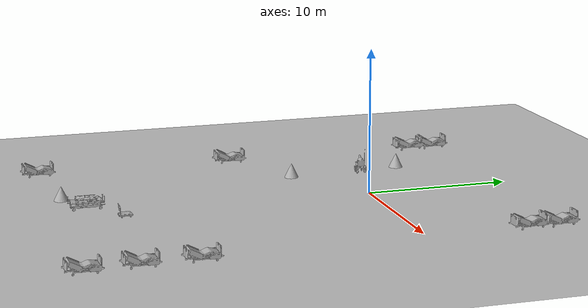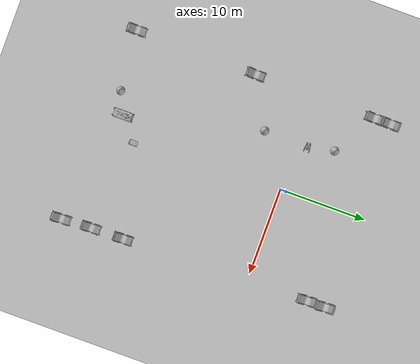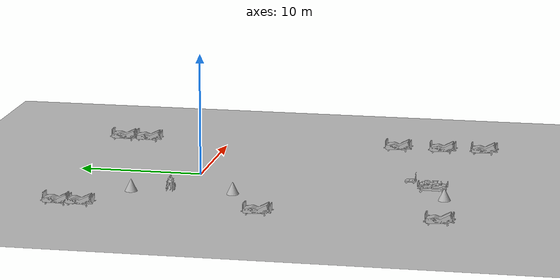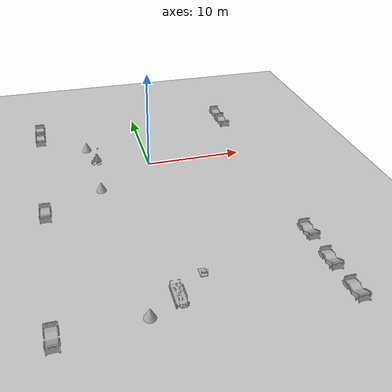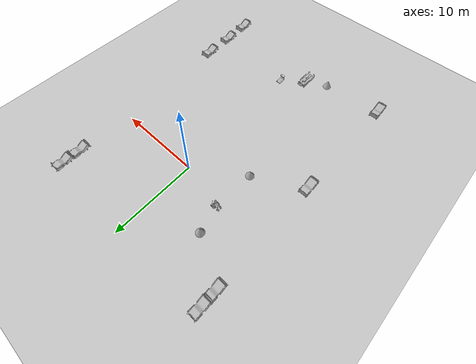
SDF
<sdf version="1.8">
 <world name="hospital_original">
  <gravity>0 0 -9.8</gravity>
  <physics name="default_physics" type="ode">
   <max_step_size>0.001</max_step_size>
   <real_time_factor>1</real_time_factor>
  </physics>
  <scene><ambient>0.6 0.6 0.6 1</ambient><background>0.4 0.4 0.4 1</background><shadows>false</shadows></scene>
  <plugin filename="gz-sim-physics-system" name="gz::sim::systems::Physics"/>
  <plugin filename="gz-sim-user-commands-system" name="gz::sim::systems::UserCommands"/>
  <plugin filename="gz-sim-scene-broadcaster-system" name="gz::sim::systems::SceneBroadcaster"/>
  <plugin filename="gz-sim-sensors-system" name="gz::sim::systems::Sensors">
   <render_engine>ogre2</render_engine>
  </plugin>
  <plugin filename="gz-sim-imu-system" name="gz::sim::systems::Imu"/>
  <plugin filename="gz-sim-contact-system" name="gz::sim::systems::Contact"/>
  <light type="directional" name="sun">
   <pose>0 0 10 0 0 0</pose>
   <diffuse>0.8 0.8 0.8 1</diffuse>
   <specular>0.2 0.2 0.2 1</specular>
   <attenuation>
    <range>1000</range>
    <constant>0.9</constant>
    <linear>0.01</linear>
    <quadratic>0.001</quadratic>
   </attenuation>
   <direction>-0.5 0.1 -0.9</direction>
  </light>
  <model name="ground_plane">
   <static>true</static>
   <link name="link">
    <collision name="collision">
     <geometry><plane><normal>0 0 1</normal><size>100 100</size></plane></geometry>
    </collision>
    <visual name="visual">
     <geometry><plane><normal>0 0 1</normal><size>100 100</size></plane></geometry>
     <material><ambient>0.8 0.8 0.8 1</ambient><diffuse>0.8 0.8 0.8 1</diffuse></material>
    </visual>
   </link>
  </model>
  <include>
   <uri>model://CGMClassic</uri>
   <static>true</static>
   <name>CGMClassic_1</name>
   <pose>11.1777 -18.4129 0 0 0 -3.13719</pose>
  </include>
  <include>
   <uri>model://CGMClassic</uri>
   <static>true</static>
   <name>CGMClassic_2</name>
   <pose>11.1179 -14.6493 0 0 0 -3.13599</pose>
  </include>
  <include>
   <uri>model://PatientWheelChair</uri>
   <static>true</static>
   <name>PatientWheelChair_1</name>
   <pose>-5.46091 1.23577 0 0 0 -1.54828</pose>
  </include>
  <include>
   <uri>model://CGMClassic</uri>
   <static>true</static>
   <name>CGMClassic_3</name>
   <pose>-11.2304 -21.1134 0 0 0 -3.11834</pose>
  </include>
  <include>
   <uri>model://CGMClassic</uri>
   <static>true</static>
   <name>CGMClassic_4</name>
   <pose>-11.0878 -7.00992 0 0 -0 3.1351</pose>
  </include>
  <include>
   <uri>model://CGMClassic</uri>
   <static>true</static>
   <name>CGMClassic_5</name>
   <pose>-11.0106 8.9505 -0.008203 -0.035019 -0.000392 3.13388</pose>
  </include>
  <include>
   <uri>model://CGMClassic</uri>
   <static>true</static>
   <name>CGMClassic_6</name>
   <pose>-11.025 7.10335 0 -0.035021 1.8e-05 -3.13762</pose>
  </include>
  <include>
   <uri>model://TrolleyBedPatient</uri>
   <static>true</static>
   <name>TrolleyBedPatient_1</name>
   <pose>-1.83202 -19.2612 0 0 -0 0</pose>
  </include>
  <include>
   <uri>model://CGMClassic</uri>
   <static>true</static>
   <name>CGMClassic_7</name>
   <pose>10.6166 9.06291 -0.008203 -0.03501 0.000885 -3.11285</pose>
  </include>
  <include>
   <uri>model://CGMClassic</uri>
   <static>true</static>
   <name>CGMClassic_8</name>
   <pose>10.6006 6.90956 -0.008203 -0.035003 0.001133 -3.10576</pose>
  </include>
  <include>
   <uri>model://ParkingTrolleyMin</uri>
   <static>true</static>
   <name>ParkingTrolleyMin_1</name>
   <pose>0.715846 -17.1496 -0.000121 -1e-06 -0 0</pose>
  </include>
  <include>
   <uri>model://CGMClassic</uri>
   <static>true</static>
   <name>CGMClassic_9</name>
   <pose>11.3613 -21.8867 0 0 0 -3.12292</pose>
  </include>
  <model name="goal_cone_01">
   <pose>-4.304 -20.534 0.5 5.254459108606895e-17 -7.713284103729037e-10 2.1515</pose>
   <static>false</static>
   <link name="goal_cone_link">
    <inertial>
     <mass>1.0</mass>
     <inertia><ixx>0.075</ixx><ixy>0</ixy><ixz>0</ixz><iyy>0.075</iyy><iyz>0</iyz><izz>0.075</izz></inertia>
    </inertial>
    <collision name="goal_cone_collision">
     <geometry><cone><radius>0.5</radius><length>1.0</length></cone></geometry>
    </collision>
    <visual name="goal_cone_visual">
     <geometry><cone><radius>0.5</radius><length>1.0</length></cone></geometry>
     <material>
      <ambient>0.699999988 0.699999988 0.699999988 1.0</ambient>
      <diffuse>0.699999988 0.699999988 0.699999988 1.0</diffuse>
      <specular>1 1 1 1</specular>
     </material>
    </visual>
   </link>
  </model>
  <model name="goal_cone_02">
   <pose>-5.578 -3.866 0.5 5.254459108606895e-17 -7.713284103729037e-10 0.2954</pose>
   <static>false</static>
   <link name="goal_cone_link">
    <inertial>
     <mass>1.0</mass>
     <inertia><ixx>0.075</ixx><ixy>0</ixy><ixz>0</ixz><iyy>0.075</iyy><iyz>0</iyz><izz>0.075</izz></inertia>
    </inertial>
    <collision name="goal_cone_collision">
     <geometry><cone><radius>0.5</radius><length>1.0</length></cone></geometry>
    </collision>
    <visual name="goal_cone_visual">
     <geometry><cone><radius>0.5</radius><length>1.0</length></cone></geometry>
     <material>
      <ambient>0.699999988 0.699999988 0.699999988 1.0</ambient>
      <diffuse>0.699999988 0.699999988 0.699999988 1.0</diffuse>
      <specular>1 1 1 1</specular>
     </material>
    </visual>
   </link>
  </model>
  <model name="goal_cone_03">
   <pose>-6.134 4.261 0.5 5.254459108606895e-17 -7.713284103729037e-10 -0.7704</pose>
   <static>false</static>
   <link name="goal_cone_link">
    <inertial>
     <mass>1.0</mass>
     <inertia><ixx>0.075</ixx><ixy>0</ixy><ixz>0</ixz><iyy>0.075</iyy><iyz>0</iyz><izz>0.075</izz></inertia>
    </inertial>
    <collision name="goal_cone_collision">
     <geometry><cone><radius>0.5</radius><length>1.0</length></cone></geometry>
    </collision>
    <visual name="goal_cone_visual">
     <geometry><cone><radius>0.5</radius><length>1.0</length></cone></geometry>
     <material>
      <ambient>0.699999988 0.699999988 0.699999988 1.0</ambient>
      <diffuse>0.699999988 0.699999988 0.699999988 1.0</diffuse>
      <specular>1 1 1 1</specular>
     </material>
    </visual>
   </link>
  </model>
 </world>
</sdf>

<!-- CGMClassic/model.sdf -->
<sdf version="1.6">
  <model name="CGMClassic">
   <static>true</static>
    <link name="body">
      <pose>0 0 0 0 0 0</pose>

      <visual name="visual">
        <geometry>
          <mesh>
            <uri>model://CGMClassic/meshes/CGMClassic.obj</uri>
            <scale>0.01 0.01 0.01</scale>
          </mesh>
        </geometry>
      </visual>

      <collision name="collision">
        <geometry>
          <mesh>
            <uri>model://CGMClassic/meshes/CGMClassic.obj</uri>
            <scale>0.01 0.01 0.01</scale>
          </mesh>
        </geometry>
      </collision>

    </link>
  </model>
</sdf>

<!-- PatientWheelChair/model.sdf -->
<sdf version="1.6">
  <model name="PatientWheelChair">
   <static>true</static>
    <link name="body">
      <pose>0 0 0 0 0 0</pose>

      <visual name="visual">
        <geometry>
          <mesh>
            <uri>model://PatientWheelChair/meshes/PatientWheelChair.obj</uri>
          </mesh>
        </geometry>
      </visual>

      <collision name="collision">
        <geometry>
          <mesh>
            <uri>model://PatientWheelChair/meshes/PatientWheelChair_Col.obj</uri>
          </mesh>
        </geometry>
      </collision>

    </link>
  </model>
</sdf>

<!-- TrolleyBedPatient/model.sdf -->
<sdf version="1.6">
  <model name="TrolleyBedPatient">
   <static>true</static>
    <link name="body">
      <pose>0 0 0 0 0 0</pose>

      <visual name="visual">
        <geometry>
          <mesh>
            <uri>model://TrolleyBedPatient/meshes/TrolleyBedPatient.obj</uri>
          </mesh>
        </geometry>
      </visual>

      <collision name="collision">
        <geometry>
          <mesh>
            <uri>model://TrolleyBedPatient/meshes/TrolleyBedPatient.obj</uri>
          </mesh>
        </geometry>
      </collision>

    </link>
  </model>
</sdf>

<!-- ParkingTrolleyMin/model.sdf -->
<sdf version="1.6">
  <model name="ParkingTrolleyMin">
    <link name="body">
      <pose>0 0 0 0 0 0</pose>

        <visual name="visual">
          <pose>0 0 0 0 0 0</pose>
          <geometry>
            <mesh><uri>model://ParkingTrolleyMin/meshes/trolleymin.obj</uri></mesh>
          </geometry>
        </visual>

        <collision name="collision">
          <pose>0 0 0 0 0 0</pose>
          <geometry>
            <mesh><uri>model://ParkingTrolleyMin/meshes/trolleymin.obj</uri></mesh>
          </geometry>
        </collision>

    </link>
  </model>
</sdf>
